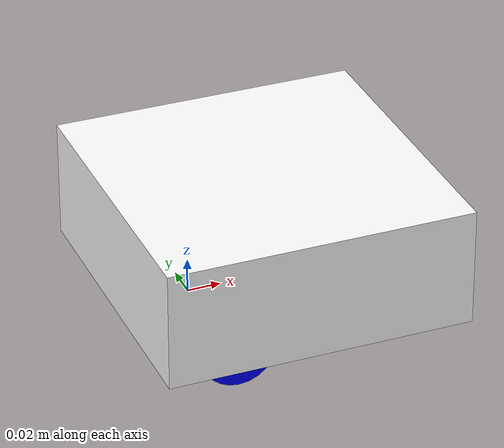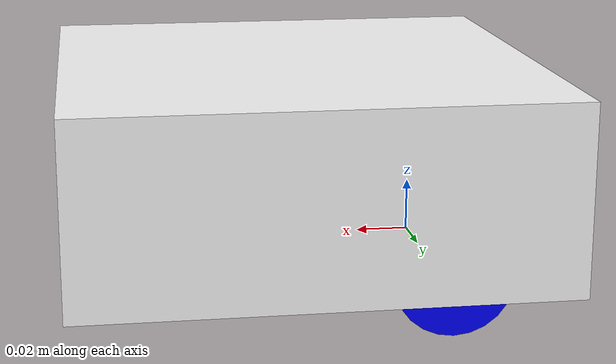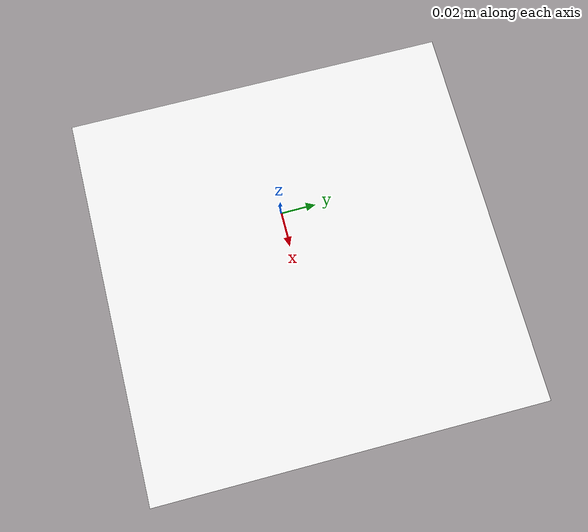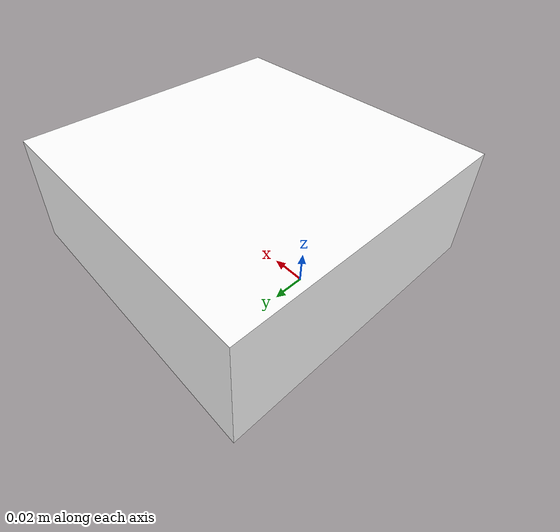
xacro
<?xml version="1.0"?>
<robot xmlns:xacro="http://www.ros.org/wiki/xacro">

<xacro:include filename="inertial_macros.xacro"/>

<material name="white">
    <color rgba="1 1 1 1" />
</material>

<material name="red">
    <color rgba="1 0 0 1" />
</material>

<material name="green">
    <color rgba="0 1 0 1" />
</material>

<material name="blue">
    <color rgba="0 0 1 1" />
</material>

<!--BASE LINK-->

<link name="base_link">

</link>

<!--BASE FOOTPRINT-->

<joint name="base_footprint_link" type="fixed">
    <parent link="base_link"/>
    <child link="base_footprint"/>
    <origin xyz="0.0 0.0 0.0" rpy="0.0 0.0 0.0"/>
</joint>

<link name="base_footprint">

</link>

<!--CHASSIS LINK-->

<joint name="chassis_joint" type="fixed">
    <parent link="base_link"/>
    <child link="chassis"/>
    <origin xyz= "-0.1 0 0"/>
</joint>

<link name="chassis">
    <visual>
        <origin  xyz="0.145 0 0.035"/>
        <geometry>
            <box size="0.18 0.18 0.07"/>
        </geometry>
        <material name="white">

        </material>
    </visual>

    <collision>
        <origin  xyz="0.145 0 0.035"/>
        <geometry>
            <box size="0.18 0.18 0.07"/>
        </geometry>
    </collision>
    <xacro:inertial_box mass="0.5" x="0.3" y="0.3" z="0.15">
        <origin xyz="0.15 0.0 0.075" rpy="0 0 0"/>
    </xacro:inertial_box>
</link>

<gazebo reference="chassis">
    <material>Gazebo/White</material>
</gazebo>

<!-- LEFT WHEEL LINK -->

<joint name="left_wheel_joint" type="continuous">
    <parent link="base_link"/>
    <child link="left_wheel"/>
    <origin xyz=" 0 0.07 0.007" rpy="-${pi/2} 0.0 0.0"/>
    <axis xyz="0.0 0.0 1"/>
</joint>

<link name="left_wheel">
    <visual>
        <geometry>
            <cylinder radius="0.022" length="0.018"/>
        </geometry>
        <material name="blue"/>
    </visual>

    <collision>
        <geometry>
            <cylinder radius="0.022" length="0.018"/>
        </geometry>
    </collision>
    <xacro:inertial_cylinder mass="0.02" radius="0.022" length="0.018">
        <origin xyz="0.0 0.0 0.0" rpy="0.0 0.0 0.0"/>
    </xacro:inertial_cylinder>
</link>

<gazebo reference="left_wheel">
    <material>Gazebo/Blue</material>
</gazebo>

<!-- RIGHT WHEEL LINK-->

<joint name="right_wheel_joint" type="continuous">
    <parent link="base_link"/>
    <child link="right_wheel"/>
    <origin xyz=" 0 -0.07 0.007" rpy="-${pi/2} 0.0 0.0"/>
    <axis xyz="0.0 0.0 1"/>
</joint>

<link name="right_wheel">
    <visual>
        <geometry>
            <cylinder radius="0.022" length="0.018"/>
        </geometry>
        <material name="blue"/>
    </visual>

    <collision>
        <geometry>
            <cylinder radius="0.022" length="0.018"/>
        </geometry>
    </collision>
    <xacro:inertial_cylinder mass="0.02" radius="0.022" length="0.018">
        <origin xyz="0.0 0.0 0.0" rpy="0.0 0.0 0.0"/>
    </xacro:inertial_cylinder>
</link>

<gazebo reference="right_wheel">
    <material>Gazebo/Blue</material>
</gazebo>

<!--CASTER WHEEL LINK-->

<joint name="caster_wheel_joint" type="fixed">
    <parent link="chassis"/>
    <child link="caster_wheel"/>
    <origin xyz="0.2 0 0"/>
</joint>

<link name="caster_wheel">
    <visual>
        <geometry>
            <sphere radius="0.015"/>
        </geometry>
        <material name="green"/>
    </visual>

    <collision>
        <geometry>
            <sphere radius="0.015"/>
        </geometry>
    </collision>
    <xacro:inertial_sphere mass="0.02" radius="0.05">
        <origin xyz="0.0 0.0 0.0" rpy="0.0 0.0 0.0"/>
    </xacro:inertial_sphere>
</link>

<gazebo reference="caster_wheel">
    <material>Gazebo/Green</material>
    <mu1 value="0.001"/>
    <mu2 value="0.001"/>
</gazebo>

</robot>
